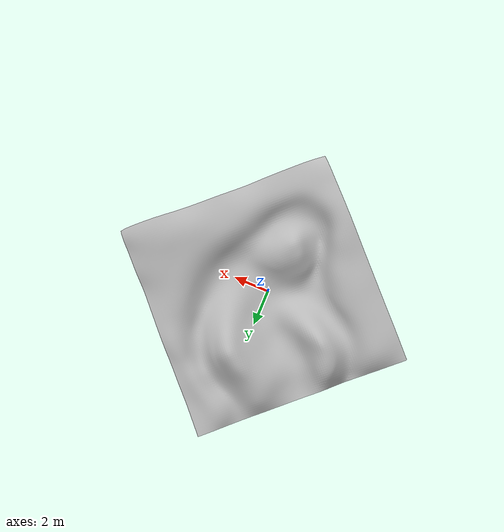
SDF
<sdf version="1.7">
 <world name="default">
  <light name="sun" type="directional">
   <pose>0 0 10 0 -0 0</pose>
   <diffuse>0.8 0.8 0.8 1</diffuse>
   <specular>0.2 0.2 0.2 1</specular>
   <attenuation>
    <range>1000</range>
    <constant>0.9</constant>
    <linear>0.01</linear>
    <quadratic>0.001</quadratic>
   </attenuation>
   <direction>-0.5 0.1 -0.9</direction>
   <spot><inner_angle>0</inner_angle><outer_angle>0</outer_angle><falloff>0</falloff></spot>
  </light>
  <model name="map_desert">
   <pose>0.14176 0.314626 -0.463105 0.099686 -0.047224 2.33328</pose>
   <static>1</static>
   <link name="map_link">
    <collision name="collision">
     <geometry><mesh><uri>model://map_desert/meshes/map_desert.dae</uri><scale>1 1 1</scale></mesh></geometry>
    </collision>
    <visual name="visual">
     <geometry><mesh><uri>model://map_desert/meshes/map_desert.dae</uri><scale>1 1 1</scale></mesh></geometry>
     <material>
      <script>
       <uri>model://map_desert/materials/scripts/map.material</uri>
       <uri>model://map_desert/materials/textures/texture.jpg</uri>
       <name>map_desert/Image</name>
      </script>
     </material>
    </visual>
    <surface>
     <friction>
      <ode><mu>99999999.0</mu><mu2>99999999.0</mu2><fdir1>0 0 0</fdir1><slip1>0</slip1><slip2>0</slip2></ode>
     </friction>
    </surface>
   </link>
  </model>
  <gravity>0 0 -9.8</gravity>
  <magnetic_field>6e-06 2.3e-05 -4.2e-05</magnetic_field>
  <atmosphere type="adiabatic"/>
  <physics type="ode">
   <max_step_size>0.001</max_step_size>
   <real_time_factor>1</real_time_factor>
   <real_time_update_rate>1000</real_time_update_rate>
  </physics>
  <scene><ambient>0.4 0.4 0.4 1</ambient><background>0.7 0.7 0.7 1</background><shadows>1</shadows></scene>
  <spherical_coordinates>
   <surface_model>EARTH_WGS84</surface_model>
   <latitude_deg>0</latitude_deg>
   <longitude_deg>0</longitude_deg>
   <elevation>0</elevation>
   <heading_deg>0</heading_deg>
  </spherical_coordinates>
 </world>
</sdf>
